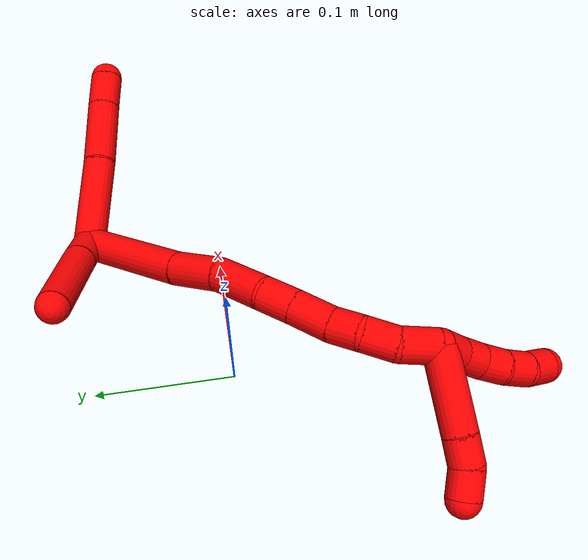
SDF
<sdf version="1.7">
 <world name="default">
  <model name="2">
   <static>0</static>
   <link name="2">
    <collision name="collision-cylinder-e_1_2_8">
     <pose>0.026572 -0.009413 -0.020145 2.70449 0.87402 2.25396</pose>
     <geometry><cylinder><radius>0.0125</radius><length>0.069297</length></cylinder></geometry>
     <surface>
      <friction><ode><mu>1.16</mu><mu2>1.16</mu2><slip1>0</slip1><slip2>0</slip2></ode></friction>
      <contact><ode><kp>1e+06</kp><kd>1</kd><max_vel>0</max_vel><min_depth>0.001</min_depth></ode></contact>
     </surface>
    </collision>
    <visual name="visual-cylinder-e_1_2_8">
     <pose>0.026572 -0.009413 -0.020145 2.70449 0.87402 2.25396</pose>
     <geometry><cylinder><radius>0.0125</radius><length>0.069297</length></cylinder></geometry>
     <material><ambient>1 0 0 1</ambient></material>
    </visual>
    <collision name="collision-cylinder-e_2_8_9">
     <pose>0.072066 -0.023792 -0.057892 2.86657 0.802378 2.5109</pose>
     <geometry><cylinder><radius>0.0125</radius><length>0.052631</length></cylinder></geometry>
     <surface>
      <friction><ode><mu>1.16</mu><mu2>1.16</mu2><slip1>0</slip1><slip2>0</slip2></ode></friction>
      <contact><ode><kp>1e+06</kp><kd>1</kd><max_vel>0</max_vel><min_depth>0.001</min_depth></ode></contact>
     </surface>
    </collision>
    <visual name="visual-cylinder-e_2_8_9">
     <pose>0.072066 -0.023792 -0.057892 2.86657 0.802378 2.5109</pose>
     <geometry><cylinder><radius>0.0125</radius><length>0.052631</length></cylinder></geometry>
     <material><ambient>1 0 0 1</ambient></material>
    </visual>
    <collision name="collision-cylinder-e_3_9_6">
     <pose>0.101583 -0.032082 -0.084078 2.77226 0.85551 2.36388</pose>
     <geometry><cylinder><radius>0.0125</radius><length>0.028072</length></cylinder></geometry>
     <surface>
      <friction><ode><mu>1.16</mu><mu2>1.16</mu2><slip1>0</slip1><slip2>0</slip2></ode></friction>
      <contact><ode><kp>1e+06</kp><kd>1</kd><max_vel>0</max_vel><min_depth>0.001</min_depth></ode></contact>
     </surface>
    </collision>
    <visual name="visual-cylinder-e_3_9_6">
     <pose>0.101583 -0.032082 -0.084078 2.77226 0.85551 2.36388</pose>
     <geometry><cylinder><radius>0.0125</radius><length>0.028072</length></cylinder></geometry>
     <material><ambient>1 0 0 1</ambient></material>
    </visual>
    <collision name="collision-cylinder-e_1_2_10">
     <pose>-0.001476 0.001325 0.015765 -0.083834 -0.092998 0.003903</pose>
     <geometry><cylinder><radius>0.0125</radius><length>0.031778</length></cylinder></geometry>
     <surface>
      <friction><ode><mu>1.16</mu><mu2>1.16</mu2><slip1>0</slip1><slip2>0</slip2></ode></friction>
      <contact><ode><kp>1e+06</kp><kd>1</kd><max_vel>0</max_vel><min_depth>0.001</min_depth></ode></contact>
     </surface>
    </collision>
    <visual name="visual-cylinder-e_1_2_10">
     <pose>-0.001476 0.001325 0.015765 -0.083834 -0.092998 0.003903</pose>
     <geometry><cylinder><radius>0.0125</radius><length>0.031778</length></cylinder></geometry>
     <material><ambient>1 0 0 1</ambient></material>
    </visual>
    <collision name="collision-cylinder-e_2_10_5">
     <pose>-0.007656 0.006144 0.065133 -0.103624 -0.138386 0.007188</pose>
     <geometry><cylinder><radius>0.0125</radius><length>0.068222</length></cylinder></geometry>
     <surface>
      <friction><ode><mu>1.16</mu><mu2>1.16</mu2><slip1>0</slip1><slip2>0</slip2></ode></friction>
      <contact><ode><kp>1e+06</kp><kd>1</kd><max_vel>0</max_vel><min_depth>0.001</min_depth></ode></contact>
     </surface>
    </collision>
    <visual name="visual-cylinder-e_2_10_5">
     <pose>-0.007656 0.006144 0.065133 -0.103624 -0.138386 0.007188</pose>
     <geometry><cylinder><radius>0.0125</radius><length>0.068222</length></cylinder></geometry>
     <material><ambient>1 0 0 1</ambient></material>
    </visual>
    <collision name="collision-cylinder-e_1_2_11">
     <pose>-0.011282 -0.036143 0.028061 0.910621 -0.241749 -0.118805</pose>
     <geometry><cylinder><radius>0.0125</radius><length>0.094255</length></cylinder></geometry>
     <surface>
      <friction><ode><mu>1.16</mu><mu2>1.16</mu2><slip1>0</slip1><slip2>0</slip2></ode></friction>
      <contact><ode><kp>1e+06</kp><kd>1</kd><max_vel>0</max_vel><min_depth>0.001</min_depth></ode></contact>
     </surface>
    </collision>
    <visual name="visual-cylinder-e_1_2_11">
     <pose>-0.011282 -0.036143 0.028061 0.910621 -0.241749 -0.118805</pose>
     <geometry><cylinder><radius>0.0125</radius><length>0.094255</length></cylinder></geometry>
     <material><ambient>1 0 0 1</ambient></material>
    </visual>
    <collision name="collision-cylinder-e_2_11_12">
     <pose>-0.025485 -0.088166 0.06709 0.966341 -0.150145 -0.078881</pose>
     <geometry><cylinder><radius>0.0125</radius><length>0.03904</length></cylinder></geometry>
     <surface>
      <friction><ode><mu>1.16</mu><mu2>1.16</mu2><slip1>0</slip1><slip2>0</slip2></ode></friction>
      <contact><ode><kp>1e+06</kp><kd>1</kd><max_vel>0</max_vel><min_depth>0.001</min_depth></ode></contact>
     </surface>
    </collision>
    <visual name="visual-cylinder-e_2_11_12">
     <pose>-0.025485 -0.088166 0.06709 0.966341 -0.150145 -0.078881</pose>
     <geometry><cylinder><radius>0.0125</radius><length>0.03904</length></cylinder></geometry>
     <material><ambient>1 0 0 1</ambient></material>
    </visual>
    <collision name="collision-cylinder-e_3_12_13">
     <pose>-0.03497 -0.118146 0.090276 0.85678 -0.33837 -0.155701</pose>
     <geometry><cylinder><radius>0.0125</radius><length>0.039554</length></cylinder></geometry>
     <surface>
      <friction><ode><mu>1.16</mu><mu2>1.16</mu2><slip1>0</slip1><slip2>0</slip2></ode></friction>
      <contact><ode><kp>1e+06</kp><kd>1</kd><max_vel>0</max_vel><min_depth>0.001</min_depth></ode></contact>
     </surface>
    </collision>
    <visual name="visual-cylinder-e_3_12_13">
     <pose>-0.03497 -0.118146 0.090276 0.85678 -0.33837 -0.155701</pose>
     <geometry><cylinder><radius>0.0125</radius><length>0.039554</length></cylinder></geometry>
     <material><ambient>1 0 0 1</ambient></material>
    </visual>
    <collision name="collision-cylinder-e_4_13_14">
     <pose>-0.04734 -0.141721 0.107811 1.05937 -0.490691 -0.291131</pose>
     <geometry><cylinder><radius>0.0125</radius><length>0.024639</length></cylinder></geometry>
     <surface>
      <friction><ode><mu>1.16</mu><mu2>1.16</mu2><slip1>0</slip1><slip2>0</slip2></ode></friction>
      <contact><ode><kp>1e+06</kp><kd>1</kd><max_vel>0</max_vel><min_depth>0.001</min_depth></ode></contact>
     </surface>
    </collision>
    <visual name="visual-cylinder-e_4_13_14">
     <pose>-0.04734 -0.141721 0.107811 1.05937 -0.490691 -0.291131</pose>
     <geometry><cylinder><radius>0.0125</radius><length>0.024639</length></cylinder></geometry>
     <material><ambient>1 0 0 1</ambient></material>
    </visual>
    <collision name="collision-cylinder-e_5_14_15">
     <pose>-0.060124 -0.16209 0.119742 1.02528 -0.500993 -0.286055</pose>
     <geometry><cylinder><radius>0.0125</radius><length>0.029058</length></cylinder></geometry>
     <surface>
      <friction><ode><mu>1.16</mu><mu2>1.16</mu2><slip1>0</slip1><slip2>0</slip2></ode></friction>
      <contact><ode><kp>1e+06</kp><kd>1</kd><max_vel>0</max_vel><min_depth>0.001</min_depth></ode></contact>
     </surface>
    </collision>
    <visual name="visual-cylinder-e_5_14_15">
     <pose>-0.060124 -0.16209 0.119742 1.02528 -0.500993 -0.286055</pose>
     <geometry><cylinder><radius>0.0125</radius><length>0.029058</length></cylinder></geometry>
     <material><ambient>1 0 0 1</ambient></material>
    </visual>
    <collision name="collision-cylinder-e_6_15_16">
     <pose>-0.070665 -0.181735 0.131178 1.06699 -0.342492 -0.203577</pose>
     <geometry><cylinder><radius>0.0125</radius><length>0.021217</length></cylinder></geometry>
     <surface>
      <friction><ode><mu>1.16</mu><mu2>1.16</mu2><slip1>0</slip1><slip2>0</slip2></ode></friction>
      <contact><ode><kp>1e+06</kp><kd>1</kd><max_vel>0</max_vel><min_depth>0.001</min_depth></ode></contact>
     </surface>
    </collision>
    <visual name="visual-cylinder-e_6_15_16">
     <pose>-0.070665 -0.181735 0.131178 1.06699 -0.342492 -0.203577</pose>
     <geometry><cylinder><radius>0.0125</radius><length>0.021217</length></cylinder></geometry>
     <material><ambient>1 0 0 1</ambient></material>
    </visual>
    <collision name="collision-cylinder-e_7_16_17">
     <pose>-0.080361 -0.200894 0.138138 1.3684 -0.523571 -0.430307</pose>
     <geometry><cylinder><radius>0.0125</radius><length>0.024537</length></cylinder></geometry>
     <surface>
      <friction><ode><mu>1.16</mu><mu2>1.16</mu2><slip1>0</slip1><slip2>0</slip2></ode></friction>
      <contact><ode><kp>1e+06</kp><kd>1</kd><max_vel>0</max_vel><min_depth>0.001</min_depth></ode></contact>
     </surface>
    </collision>
    <visual name="visual-cylinder-e_7_16_17">
     <pose>-0.080361 -0.200894 0.138138 1.3684 -0.523571 -0.430307</pose>
     <geometry><cylinder><radius>0.0125</radius><length>0.024537</length></cylinder></geometry>
     <material><ambient>1 0 0 1</ambient></material>
    </visual>
    <collision name="collision-cylinder-e_8_17_1">
     <pose>-0.091277 -0.224273 0.139444 1.63466 -0.352523 -0.375263</pose>
     <geometry><cylinder><radius>0.0125</radius><length>0.027699</length></cylinder></geometry>
     <surface>
      <friction><ode><mu>1.16</mu><mu2>1.16</mu2><slip1>0</slip1><slip2>0</slip2></ode></friction>
      <contact><ode><kp>1e+06</kp><kd>1</kd><max_vel>0</max_vel><min_depth>0.001</min_depth></ode></contact>
     </surface>
    </collision>
    <visual name="visual-cylinder-e_8_17_1">
     <pose>-0.091277 -0.224273 0.139444 1.63466 -0.352523 -0.375263</pose>
     <geometry><cylinder><radius>0.0125</radius><length>0.027699</length></cylinder></geometry>
     <material><ambient>1 0 0 1</ambient></material>
    </visual>
    <collision name="collision-cylinder-e_1_1_18">
     <pose>-0.122567 -0.235974 0.150918 -0.102924 -1.13422 0.065586</pose>
     <geometry><cylinder><radius>0.0125</radius><length>0.058503</length></cylinder></geometry>
     <surface>
      <friction><ode><mu>1.16</mu><mu2>1.16</mu2><slip1>0</slip1><slip2>0</slip2></ode></friction>
      <contact><ode><kp>1e+06</kp><kd>1</kd><max_vel>0</max_vel><min_depth>0.001</min_depth></ode></contact>
     </surface>
    </collision>
    <visual name="visual-cylinder-e_1_1_18">
     <pose>-0.122567 -0.235974 0.150918 -0.102924 -1.13422 0.065586</pose>
     <geometry><cylinder><radius>0.0125</radius><length>0.058503</length></cylinder></geometry>
     <material><ambient>1 0 0 1</ambient></material>
    </visual>
    <collision name="collision-cylinder-e_2_18_19">
     <pose>-0.158751 -0.234143 0.166965 -0.148457 -1.19791 0.101437</pose>
     <geometry><cylinder><radius>0.0125</radius><length>0.020781</length></cylinder></geometry>
     <surface>
      <friction><ode><mu>1.16</mu><mu2>1.16</mu2><slip1>0</slip1><slip2>0</slip2></ode></friction>
      <contact><ode><kp>1e+06</kp><kd>1</kd><max_vel>0</max_vel><min_depth>0.001</min_depth></ode></contact>
     </surface>
    </collision>
    <visual name="visual-cylinder-e_2_18_19">
     <pose>-0.158751 -0.234143 0.166965 -0.148457 -1.19791 0.101437</pose>
     <geometry><cylinder><radius>0.0125</radius><length>0.020781</length></cylinder></geometry>
     <material><ambient>1 0 0 1</ambient></material>
    </visual>
    <collision name="collision-cylinder-e_3_19_4">
     <pose>-0.17707 -0.229669 0.174865 -0.755376 -0.986963 0.420475</pose>
     <geometry><cylinder><radius>0.0125</radius><length>0.020716</length></cylinder></geometry>
     <surface>
      <friction><ode><mu>1.16</mu><mu2>1.16</mu2><slip1>0</slip1><slip2>0</slip2></ode></friction>
      <contact><ode><kp>1e+06</kp><kd>1</kd><max_vel>0</max_vel><min_depth>0.001</min_depth></ode></contact>
     </surface>
    </collision>
    <visual name="visual-cylinder-e_3_19_4">
     <pose>-0.17707 -0.229669 0.174865 -0.755376 -0.986963 0.420475</pose>
     <geometry><cylinder><radius>0.0125</radius><length>0.020716</length></cylinder></geometry>
     <material><ambient>1 0 0 1</ambient></material>
    </visual>
    <collision name="collision-cylinder-e_1_1_20">
     <pose>-0.102732 -0.242729 0.133576 2.31381 -0.730646 -1.43284</pose>
     <geometry><cylinder><radius>0.0125</radius><length>0.02</length></cylinder></geometry>
     <surface>
      <friction><ode><mu>1.16</mu><mu2>1.16</mu2><slip1>0</slip1><slip2>0</slip2></ode></friction>
      <contact><ode><kp>1e+06</kp><kd>1</kd><max_vel>0</max_vel><min_depth>0.001</min_depth></ode></contact>
     </surface>
    </collision>
    <visual name="visual-cylinder-e_1_1_20">
     <pose>-0.102732 -0.242729 0.133576 2.31381 -0.730646 -1.43284</pose>
     <geometry><cylinder><radius>0.0125</radius><length>0.02</length></cylinder></geometry>
     <material><ambient>1 0 0 1</ambient></material>
    </visual>
    <collision name="collision-cylinder-e_2_20_21">
     <pose>-0.115837 -0.254903 0.124811 2.07911 -0.698555 -1.10976</pose>
     <geometry><cylinder><radius>0.0125</radius><length>0.02</length></cylinder></geometry>
     <surface>
      <friction><ode><mu>1.16</mu><mu2>1.16</mu2><slip1>0</slip1><slip2>0</slip2></ode></friction>
      <contact><ode><kp>1e+06</kp><kd>1</kd><max_vel>0</max_vel><min_depth>0.001</min_depth></ode></contact>
     </surface>
    </collision>
    <visual name="visual-cylinder-e_2_20_21">
     <pose>-0.115837 -0.254903 0.124811 2.07911 -0.698555 -1.10976</pose>
     <geometry><cylinder><radius>0.0125</radius><length>0.02</length></cylinder></geometry>
     <material><ambient>1 0 0 1</ambient></material>
    </visual>
    <collision name="collision-cylinder-e_3_21_22">
     <pose>-0.12805 -0.269502 0.119081 1.81877 -0.616454 -0.776528</pose>
     <geometry><cylinder><radius>0.0125</radius><length>0.02</length></cylinder></geometry>
     <surface>
      <friction><ode><mu>1.16</mu><mu2>1.16</mu2><slip1>0</slip1><slip2>0</slip2></ode></friction>
      <contact><ode><kp>1e+06</kp><kd>1</kd><max_vel>0</max_vel><min_depth>0.001</min_depth></ode></contact>
     </surface>
    </collision>
    <visual name="visual-cylinder-e_3_21_22">
     <pose>-0.12805 -0.269502 0.119081 1.81877 -0.616454 -0.776528</pose>
     <geometry><cylinder><radius>0.0125</radius><length>0.02</length></cylinder></geometry>
     <material><ambient>1 0 0 1</ambient></material>
    </visual>
    <collision name="collision-cylinder-e_4_22_23">
     <pose>-0.138735 -0.285427 0.113656 1.97436 -0.512578 -0.755555</pose>
     <geometry><cylinder><radius>0.0125</radius><length>0.02</length></cylinder></geometry>
     <surface>
      <friction><ode><mu>1.16</mu><mu2>1.16</mu2><slip1>0</slip1><slip2>0</slip2></ode></friction>
      <contact><ode><kp>1e+06</kp><kd>1</kd><max_vel>0</max_vel><min_depth>0.001</min_depth></ode></contact>
     </surface>
    </collision>
    <visual name="visual-cylinder-e_4_22_23">
     <pose>-0.138735 -0.285427 0.113656 1.97436 -0.512578 -0.755555</pose>
     <geometry><cylinder><radius>0.0125</radius><length>0.02</length></cylinder></geometry>
     <material><ambient>1 0 0 1</ambient></material>
    </visual>
    <collision name="collision-cylinder-e_5_23_3">
     <pose>-0.147134 -0.300989 0.104682 2.20494 -0.356978 -0.68515</pose>
     <geometry><cylinder><radius>0.0125</radius><length>0.02</length></cylinder></geometry>
     <surface>
      <friction><ode><mu>1.16</mu><mu2>1.16</mu2><slip1>0</slip1><slip2>0</slip2></ode></friction>
      <contact><ode><kp>1e+06</kp><kd>1</kd><max_vel>0</max_vel><min_depth>0.001</min_depth></ode></contact>
     </surface>
    </collision>
    <visual name="visual-cylinder-e_5_23_3">
     <pose>-0.147134 -0.300989 0.104682 2.20494 -0.356978 -0.68515</pose>
     <geometry><cylinder><radius>0.0125</radius><length>0.02</length></cylinder></geometry>
     <material><ambient>1 0 0 1</ambient></material>
    </visual>
    <collision name="collision-sphere-3">
     <pose>-0.150628 -0.308537 0.099131 0 -0 0</pose>
     <geometry><sphere><radius>0.0125</radius></sphere></geometry>
     <surface>
      <friction><ode><mu>1.16</mu><mu2>1.16</mu2><slip1>0</slip1><slip2>0</slip2></ode></friction>
      <contact><ode><kp>1e+06</kp><kd>1</kd><max_vel>0</max_vel><min_depth>0.001</min_depth></ode></contact>
     </surface>
    </collision>
    <visual name="visual-sphere-3">
     <pose>-0.150628 -0.308537 0.099131 0 -0 0</pose>
     <geometry><sphere><radius>0.0125</radius></sphere></geometry>
     <material><ambient>1 0 0 1</ambient></material>
    </visual>
    <collision name="collision-sphere-23">
     <pose>-0.143639 -0.293442 0.110234 0 -0 0</pose>
     <geometry><sphere><radius>0.0125</radius></sphere></geometry>
     <surface>
      <friction><ode><mu>1.16</mu><mu2>1.16</mu2><slip1>0</slip1><slip2>0</slip2></ode></friction>
      <contact><ode><kp>1e+06</kp><kd>1</kd><max_vel>0</max_vel><min_depth>0.001</min_depth></ode></contact>
     </surface>
    </collision>
    <visual name="visual-sphere-23">
     <pose>-0.143639 -0.293442 0.110234 0 -0 0</pose>
     <geometry><sphere><radius>0.0125</radius></sphere></geometry>
     <material><ambient>1 0 0 1</ambient></material>
    </visual>
    <collision name="collision-sphere-22">
     <pose>-0.133831 -0.277412 0.117078 0 -0 0</pose>
     <geometry><sphere><radius>0.0125</radius></sphere></geometry>
     <surface>
      <friction><ode><mu>1.16</mu><mu2>1.16</mu2><slip1>0</slip1><slip2>0</slip2></ode></friction>
      <contact><ode><kp>1e+06</kp><kd>1</kd><max_vel>0</max_vel><min_depth>0.001</min_depth></ode></contact>
     </surface>
    </collision>
    <visual name="visual-sphere-22">
     <pose>-0.133831 -0.277412 0.117078 0 -0 0</pose>
     <geometry><sphere><radius>0.0125</radius></sphere></geometry>
     <material><ambient>1 0 0 1</ambient></material>
    </visual>
    <collision name="collision-sphere-21">
     <pose>-0.122268 -0.261593 0.121084 0 -0 0</pose>
     <geometry><sphere><radius>0.0125</radius></sphere></geometry>
     <surface>
      <friction><ode><mu>1.16</mu><mu2>1.16</mu2><slip1>0</slip1><slip2>0</slip2></ode></friction>
      <contact><ode><kp>1e+06</kp><kd>1</kd><max_vel>0</max_vel><min_depth>0.001</min_depth></ode></contact>
     </surface>
    </collision>
    <visual name="visual-sphere-21">
     <pose>-0.122268 -0.261593 0.121084 0 -0 0</pose>
     <geometry><sphere><radius>0.0125</radius></sphere></geometry>
     <material><ambient>1 0 0 1</ambient></material>
    </visual>
    <collision name="collision-sphere-20">
     <pose>-0.109406 -0.248213 0.128538 0 -0 0</pose>
     <geometry><sphere><radius>0.0125</radius></sphere></geometry>
     <surface>
      <friction><ode><mu>1.16</mu><mu2>1.16</mu2><slip1>0</slip1><slip2>0</slip2></ode></friction>
      <contact><ode><kp>1e+06</kp><kd>1</kd><max_vel>0</max_vel><min_depth>0.001</min_depth></ode></contact>
     </surface>
    </collision>
    <visual name="visual-sphere-20">
     <pose>-0.109406 -0.248213 0.128538 0 -0 0</pose>
     <geometry><sphere><radius>0.0125</radius></sphere></geometry>
     <material><ambient>1 0 0 1</ambient></material>
    </visual>
    <collision name="collision-sphere-4">
     <pose>-0.185712 -0.225754 0.179022 0 -0 0</pose>
     <geometry><sphere><radius>0.0125</radius></sphere></geometry>
     <surface>
      <friction><ode><mu>1.16</mu><mu2>1.16</mu2><slip1>0</slip1><slip2>0</slip2></ode></friction>
      <contact><ode><kp>1e+06</kp><kd>1</kd><max_vel>0</max_vel><min_depth>0.001</min_depth></ode></contact>
     </surface>
    </collision>
    <visual name="visual-sphere-4">
     <pose>-0.185712 -0.225754 0.179022 0 -0 0</pose>
     <geometry><sphere><radius>0.0125</radius></sphere></geometry>
     <material><ambient>1 0 0 1</ambient></material>
    </visual>
    <collision name="collision-sphere-5">
     <pose>-0.012362 0.009639 0.098737 0 -0 0</pose>
     <geometry><sphere><radius>0.0125</radius></sphere></geometry>
     <surface>
      <friction><ode><mu>1.16</mu><mu2>1.16</mu2><slip1>0</slip1><slip2>0</slip2></ode></friction>
      <contact><ode><kp>1e+06</kp><kd>1</kd><max_vel>0</max_vel><min_depth>0.001</min_depth></ode></contact>
     </surface>
    </collision>
    <visual name="visual-sphere-5">
     <pose>-0.012362 0.009639 0.098737 0 -0 0</pose>
     <geometry><sphere><radius>0.0125</radius></sphere></geometry>
     <material><ambient>1 0 0 1</ambient></material>
    </visual>
    <collision name="collision-sphere-10">
     <pose>-0.002951 0.002649 0.03153 0 -0 0</pose>
     <geometry><sphere><radius>0.0125</radius></sphere></geometry>
     <surface>
      <friction><ode><mu>1.16</mu><mu2>1.16</mu2><slip1>0</slip1><slip2>0</slip2></ode></friction>
      <contact><ode><kp>1e+06</kp><kd>1</kd><max_vel>0</max_vel><min_depth>0.001</min_depth></ode></contact>
     </surface>
    </collision>
    <visual name="visual-sphere-10">
     <pose>-0.002951 0.002649 0.03153 0 -0 0</pose>
     <geometry><sphere><radius>0.0125</radius></sphere></geometry>
     <material><ambient>1 0 0 1</ambient></material>
    </visual>
    <collision name="collision-sphere-6">
     <pose>0.112179 -0.035405 -0.092663 0 -0 0</pose>
     <geometry><sphere><radius>0.0125</radius></sphere></geometry>
     <surface>
      <friction><ode><mu>1.16</mu><mu2>1.16</mu2><slip1>0</slip1><slip2>0</slip2></ode></friction>
      <contact><ode><kp>1e+06</kp><kd>1</kd><max_vel>0</max_vel><min_depth>0.001</min_depth></ode></contact>
     </surface>
    </collision>
    <visual name="visual-sphere-6">
     <pose>0.112179 -0.035405 -0.092663 0 -0 0</pose>
     <geometry><sphere><radius>0.0125</radius></sphere></geometry>
     <material><ambient>1 0 0 1</ambient></material>
    </visual>
    <collision name="collision-sphere-9">
     <pose>0.090987 -0.028759 -0.075494 0 -0 0</pose>
     <geometry><sphere><radius>0.0125</radius></sphere></geometry>
     <surface>
      <friction><ode><mu>1.16</mu><mu2>1.16</mu2><slip1>0</slip1><slip2>0</slip2></ode></friction>
      <contact><ode><kp>1e+06</kp><kd>1</kd><max_vel>0</max_vel><min_depth>0.001</min_depth></ode></contact>
     </surface>
    </collision>
    <visual name="visual-sphere-9">
     <pose>0.090987 -0.028759 -0.075494 0 -0 0</pose>
     <geometry><sphere><radius>0.0125</radius></sphere></geometry>
     <material><ambient>1 0 0 1</ambient></material>
    </visual>
    <collision name="collision-sphere-2">
     <geometry><sphere><radius>0.0125</radius></sphere></geometry>
     <surface>
      <friction><ode><mu>1.16</mu><mu2>1.16</mu2><slip1>0</slip1><slip2>0</slip2></ode></friction>
      <contact><ode><kp>1e+06</kp><kd>1</kd><max_vel>0</max_vel><min_depth>0.001</min_depth></ode></contact>
     </surface>
    </collision>
    <visual name="visual-sphere-2">
     <geometry><sphere><radius>0.0125</radius></sphere></geometry>
     <material><ambient>1 0 0 1</ambient></material>
    </visual>
    <collision name="collision-sphere-19">
     <pose>-0.168427 -0.233583 0.170708 0 -0 0</pose>
     <geometry><sphere><radius>0.0125</radius></sphere></geometry>
     <surface>
      <friction><ode><mu>1.16</mu><mu2>1.16</mu2><slip1>0</slip1><slip2>0</slip2></ode></friction>
      <contact><ode><kp>1e+06</kp><kd>1</kd><max_vel>0</max_vel><min_depth>0.001</min_depth></ode></contact>
     </surface>
    </collision>
    <visual name="visual-sphere-19">
     <pose>-0.168427 -0.233583 0.170708 0 -0 0</pose>
     <geometry><sphere><radius>0.0125</radius></sphere></geometry>
     <material><ambient>1 0 0 1</ambient></material>
    </visual>
    <collision name="collision-sphere-8">
     <pose>0.053145 -0.018825 -0.04029 0 -0 0</pose>
     <geometry><sphere><radius>0.0125</radius></sphere></geometry>
     <surface>
      <friction><ode><mu>1.16</mu><mu2>1.16</mu2><slip1>0</slip1><slip2>0</slip2></ode></friction>
      <contact><ode><kp>1e+06</kp><kd>1</kd><max_vel>0</max_vel><min_depth>0.001</min_depth></ode></contact>
     </surface>
    </collision>
    <visual name="visual-sphere-8">
     <pose>0.053145 -0.018825 -0.04029 0 -0 0</pose>
     <geometry><sphere><radius>0.0125</radius></sphere></geometry>
     <material><ambient>1 0 0 1</ambient></material>
    </visual>
    <collision name="collision-sphere-11">
     <pose>-0.022565 -0.072286 0.056122 0 -0 0</pose>
     <geometry><sphere><radius>0.0125</radius></sphere></geometry>
     <surface>
      <friction><ode><mu>1.16</mu><mu2>1.16</mu2><slip1>0</slip1><slip2>0</slip2></ode></friction>
      <contact><ode><kp>1e+06</kp><kd>1</kd><max_vel>0</max_vel><min_depth>0.001</min_depth></ode></contact>
     </surface>
    </collision>
    <visual name="visual-sphere-11">
     <pose>-0.022565 -0.072286 0.056122 0 -0 0</pose>
     <geometry><sphere><radius>0.0125</radius></sphere></geometry>
     <material><ambient>1 0 0 1</ambient></material>
    </visual>
    <collision name="collision-sphere-12">
     <pose>-0.028404 -0.104047 0.078059 0 -0 0</pose>
     <geometry><sphere><radius>0.0125</radius></sphere></geometry>
     <surface>
      <friction><ode><mu>1.16</mu><mu2>1.16</mu2><slip1>0</slip1><slip2>0</slip2></ode></friction>
      <contact><ode><kp>1e+06</kp><kd>1</kd><max_vel>0</max_vel><min_depth>0.001</min_depth></ode></contact>
     </surface>
    </collision>
    <visual name="visual-sphere-12">
     <pose>-0.028404 -0.104047 0.078059 0 -0 0</pose>
     <geometry><sphere><radius>0.0125</radius></sphere></geometry>
     <material><ambient>1 0 0 1</ambient></material>
    </visual>
    <collision name="collision-sphere-13">
     <pose>-0.041535 -0.132245 0.102493 0 -0 0</pose>
     <geometry><sphere><radius>0.0125</radius></sphere></geometry>
     <surface>
      <friction><ode><mu>1.16</mu><mu2>1.16</mu2><slip1>0</slip1><slip2>0</slip2></ode></friction>
      <contact><ode><kp>1e+06</kp><kd>1</kd><max_vel>0</max_vel><min_depth>0.001</min_depth></ode></contact>
     </surface>
    </collision>
    <visual name="visual-sphere-13">
     <pose>-0.041535 -0.132245 0.102493 0 -0 0</pose>
     <geometry><sphere><radius>0.0125</radius></sphere></geometry>
     <material><ambient>1 0 0 1</ambient></material>
    </visual>
    <collision name="collision-sphere-14">
     <pose>-0.053146 -0.151196 0.11313 0 -0 0</pose>
     <geometry><sphere><radius>0.0125</radius></sphere></geometry>
     <surface>
      <friction><ode><mu>1.16</mu><mu2>1.16</mu2><slip1>0</slip1><slip2>0</slip2></ode></friction>
      <contact><ode><kp>1e+06</kp><kd>1</kd><max_vel>0</max_vel><min_depth>0.001</min_depth></ode></contact>
     </surface>
    </collision>
    <visual name="visual-sphere-14">
     <pose>-0.053146 -0.151196 0.11313 0 -0 0</pose>
     <geometry><sphere><radius>0.0125</radius></sphere></geometry>
     <material><ambient>1 0 0 1</ambient></material>
    </visual>
    <collision name="collision-sphere-15">
     <pose>-0.067102 -0.172984 0.126354 0 -0 0</pose>
     <geometry><sphere><radius>0.0125</radius></sphere></geometry>
     <surface>
      <friction><ode><mu>1.16</mu><mu2>1.16</mu2><slip1>0</slip1><slip2>0</slip2></ode></friction>
      <contact><ode><kp>1e+06</kp><kd>1</kd><max_vel>0</max_vel><min_depth>0.001</min_depth></ode></contact>
     </surface>
    </collision>
    <visual name="visual-sphere-15">
     <pose>-0.067102 -0.172984 0.126354 0 -0 0</pose>
     <geometry><sphere><radius>0.0125</radius></sphere></geometry>
     <material><ambient>1 0 0 1</ambient></material>
    </visual>
    <collision name="collision-sphere-16">
     <pose>-0.074227 -0.190486 0.136002 0 -0 0</pose>
     <geometry><sphere><radius>0.0125</radius></sphere></geometry>
     <surface>
      <friction><ode><mu>1.16</mu><mu2>1.16</mu2><slip1>0</slip1><slip2>0</slip2></ode></friction>
      <contact><ode><kp>1e+06</kp><kd>1</kd><max_vel>0</max_vel><min_depth>0.001</min_depth></ode></contact>
     </surface>
    </collision>
    <visual name="visual-sphere-16">
     <pose>-0.074227 -0.190486 0.136002 0 -0 0</pose>
     <geometry><sphere><radius>0.0125</radius></sphere></geometry>
     <material><ambient>1 0 0 1</ambient></material>
    </visual>
    <collision name="collision-sphere-17">
     <pose>-0.086495 -0.211302 0.140273 0 -0 0</pose>
     <geometry><sphere><radius>0.0125</radius></sphere></geometry>
     <surface>
      <friction><ode><mu>1.16</mu><mu2>1.16</mu2><slip1>0</slip1><slip2>0</slip2></ode></friction>
      <contact><ode><kp>1e+06</kp><kd>1</kd><max_vel>0</max_vel><min_depth>0.001</min_depth></ode></contact>
     </surface>
    </collision>
    <visual name="visual-sphere-17">
     <pose>-0.086495 -0.211302 0.140273 0 -0 0</pose>
     <geometry><sphere><radius>0.0125</radius></sphere></geometry>
     <material><ambient>1 0 0 1</ambient></material>
    </visual>
    <collision name="collision-sphere-1">
     <pose>-0.096059 -0.237244 0.138614 0 -0 0</pose>
     <geometry><sphere><radius>0.0125</radius></sphere></geometry>
     <surface>
      <friction><ode><mu>1.16</mu><mu2>1.16</mu2><slip1>0</slip1><slip2>0</slip2></ode></friction>
      <contact><ode><kp>1e+06</kp><kd>1</kd><max_vel>0</max_vel><min_depth>0.001</min_depth></ode></contact>
     </surface>
    </collision>
    <visual name="visual-sphere-1">
     <pose>-0.096059 -0.237244 0.138614 0 -0 0</pose>
     <geometry><sphere><radius>0.0125</radius></sphere></geometry>
     <material><ambient>1 0 0 1</ambient></material>
    </visual>
    <collision name="collision-sphere-18">
     <pose>-0.149074 -0.234703 0.163221 0 -0 0</pose>
     <geometry><sphere><radius>0.0125</radius></sphere></geometry>
     <surface>
      <friction><ode><mu>1.16</mu><mu2>1.16</mu2><slip1>0</slip1><slip2>0</slip2></ode></friction>
      <contact><ode><kp>1e+06</kp><kd>1</kd><max_vel>0</max_vel><min_depth>0.001</min_depth></ode></contact>
     </surface>
    </collision>
    <visual name="visual-sphere-18">
     <pose>-0.149074 -0.234703 0.163221 0 -0 0</pose>
     <geometry><sphere><radius>0.0125</radius></sphere></geometry>
     <material><ambient>1 0 0 1</ambient></material>
    </visual>
    <inertial>
     <pose>-0.041634 -0.116753 0.06798 0 -0 0</pose>
     <mass>0.75</mass>
     <inertia>
      <ixx>0.000112</ixx>
      <ixy>0</ixy>
      <ixz>0</ixz>
      <iyy>0.000136</iyy>
      <iyz>0</iyz>
      <izz>0.000118</izz>
     </inertia>
    </inertial>
   </link>
   <pose>0.131361 0.099347 0.011409 -0.357937 -0.927489 0.303709</pose>
  </model>
 </world>
</sdf>
